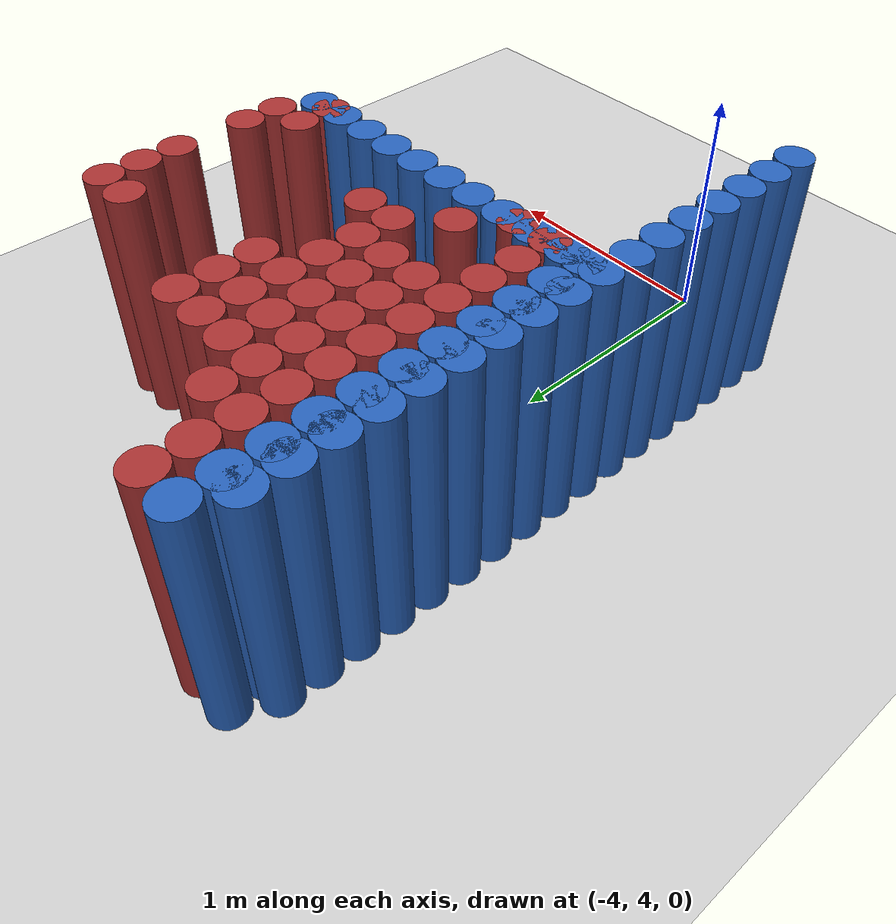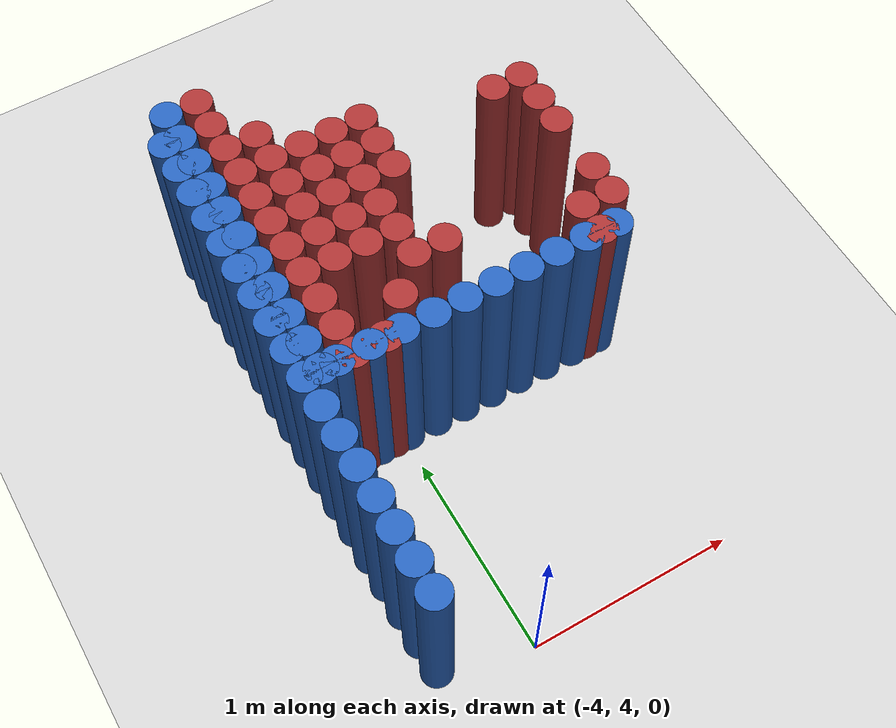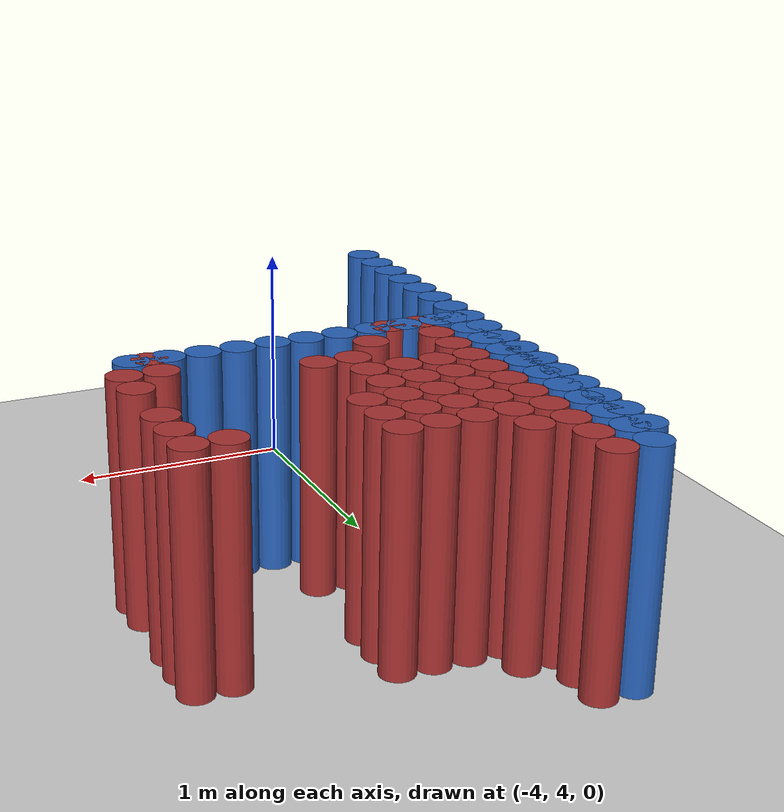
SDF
<sdf version="1.6">
 <world name="barn_world">
  <model name="ground_plane">
   <static>1</static>
   <link name="link">
    <collision name="collision">
     <geometry><plane><normal>0 0 1</normal><size>100 100</size></plane></geometry>
    </collision>
    <visual name="visual">
     <geometry><plane><normal>0 0 1</normal><size>100 100</size></plane></geometry>
     <material>
      <script><uri>file://media/materials/scripts/gazebo.material</uri><name>Gazebo/Grey</name></script>
     </material>
    </visual>
   </link>
  </model>
  <model name="unit_cylinder_83">
   <static>1</static>
   <pose>-4.4250 4.1250 0.5 0 0 0</pose>
   <link name="link">
    <collision name="collision">
     <geometry><cylinder><radius>0.075</radius><length>1</length></cylinder></geometry>
    </collision>
    <visual name="visual">
     <geometry><cylinder><radius>0.075</radius><length>1</length></cylinder></geometry>
     <material><ambient>0.152 0.379 0.72 1</ambient><diffuse>0.152 0.379 0.72 1</diffuse></material>
    </visual>
   </link>
  </model>
  <model name="unit_cylinder_85">
   <static>1</static>
   <pose>-4.4250 4.2750 0.5 0 0 0</pose>
   <link name="link">
    <collision name="collision">
     <geometry><cylinder><radius>0.075</radius><length>1</length></cylinder></geometry>
    </collision>
    <visual name="visual">
     <geometry><cylinder><radius>0.075</radius><length>1</length></cylinder></geometry>
     <material><ambient>0.152 0.379 0.72 1</ambient><diffuse>0.152 0.379 0.72 1</diffuse></material>
    </visual>
   </link>
  </model>
  <model name="unit_cylinder_87">
   <static>1</static>
   <pose>-4.4250 4.4250 0.5 0 0 0</pose>
   <link name="link">
    <collision name="collision">
     <geometry><cylinder><radius>0.075</radius><length>1</length></cylinder></geometry>
    </collision>
    <visual name="visual">
     <geometry><cylinder><radius>0.075</radius><length>1</length></cylinder></geometry>
     <material><ambient>0.152 0.379 0.72 1</ambient><diffuse>0.152 0.379 0.72 1</diffuse></material>
    </visual>
   </link>
  </model>
  <model name="unit_cylinder_89">
   <static>1</static>
   <pose>-4.4250 4.5750 0.5 0 0 0</pose>
   <link name="link">
    <collision name="collision">
     <geometry><cylinder><radius>0.075</radius><length>1</length></cylinder></geometry>
    </collision>
    <visual name="visual">
     <geometry><cylinder><radius>0.075</radius><length>1</length></cylinder></geometry>
     <material><ambient>0.152 0.379 0.72 1</ambient><diffuse>0.152 0.379 0.72 1</diffuse></material>
    </visual>
   </link>
  </model>
  <model name="unit_cylinder_91">
   <static>1</static>
   <pose>-4.4250 4.7250 0.5 0 0 0</pose>
   <link name="link">
    <collision name="collision">
     <geometry><cylinder><radius>0.075</radius><length>1</length></cylinder></geometry>
    </collision>
    <visual name="visual">
     <geometry><cylinder><radius>0.075</radius><length>1</length></cylinder></geometry>
     <material><ambient>0.152 0.379 0.72 1</ambient><diffuse>0.152 0.379 0.72 1</diffuse></material>
    </visual>
   </link>
  </model>
  <model name="unit_cylinder_93">
   <static>1</static>
   <pose>-4.4250 4.8750 0.5 0 0 0</pose>
   <link name="link">
    <collision name="collision">
     <geometry><cylinder><radius>0.075</radius><length>1</length></cylinder></geometry>
    </collision>
    <visual name="visual">
     <geometry><cylinder><radius>0.075</radius><length>1</length></cylinder></geometry>
     <material><ambient>0.152 0.379 0.72 1</ambient><diffuse>0.152 0.379 0.72 1</diffuse></material>
    </visual>
   </link>
  </model>
  <model name="unit_cylinder_95">
   <static>1</static>
   <pose>-4.4250 5.0250 0.5 0 0 0</pose>
   <link name="link">
    <collision name="collision">
     <geometry><cylinder><radius>0.075</radius><length>1</length></cylinder></geometry>
    </collision>
    <visual name="visual">
     <geometry><cylinder><radius>0.075</radius><length>1</length></cylinder></geometry>
     <material><ambient>0.152 0.379 0.72 1</ambient><diffuse>0.152 0.379 0.72 1</diffuse></material>
    </visual>
   </link>
  </model>
  <model name="unit_cylinder_115">
   <static>1</static>
   <pose>-2.9250 5.1750 0.5 0 0 0</pose>
   <link name="link">
    <collision name="collision">
     <geometry><cylinder><radius>0.075</radius><length>1</length></cylinder></geometry>
    </collision>
    <visual name="visual">
     <geometry><cylinder><radius>0.075</radius><length>1</length></cylinder></geometry>
     <material><ambient>0.152 0.379 0.72 1</ambient><diffuse>0.152 0.379 0.72 1</diffuse></material>
    </visual>
   </link>
  </model>
  <model name="unit_cylinder_116">
   <static>1</static>
   <pose>-3.0750 5.1750 0.5 0 0 0</pose>
   <link name="link">
    <collision name="collision">
     <geometry><cylinder><radius>0.075</radius><length>1</length></cylinder></geometry>
    </collision>
    <visual name="visual">
     <geometry><cylinder><radius>0.075</radius><length>1</length></cylinder></geometry>
     <material><ambient>0.152 0.379 0.72 1</ambient><diffuse>0.152 0.379 0.72 1</diffuse></material>
    </visual>
   </link>
  </model>
  <model name="unit_cylinder_117">
   <static>1</static>
   <pose>-3.2250 5.1750 0.5 0 0 0</pose>
   <link name="link">
    <collision name="collision">
     <geometry><cylinder><radius>0.075</radius><length>1</length></cylinder></geometry>
    </collision>
    <visual name="visual">
     <geometry><cylinder><radius>0.075</radius><length>1</length></cylinder></geometry>
     <material><ambient>0.152 0.379 0.72 1</ambient><diffuse>0.152 0.379 0.72 1</diffuse></material>
    </visual>
   </link>
  </model>
  <model name="unit_cylinder_118">
   <static>1</static>
   <pose>-3.3750 5.1750 0.5 0 0 0</pose>
   <link name="link">
    <collision name="collision">
     <geometry><cylinder><radius>0.075</radius><length>1</length></cylinder></geometry>
    </collision>
    <visual name="visual">
     <geometry><cylinder><radius>0.075</radius><length>1</length></cylinder></geometry>
     <material><ambient>0.152 0.379 0.72 1</ambient><diffuse>0.152 0.379 0.72 1</diffuse></material>
    </visual>
   </link>
  </model>
  <model name="unit_cylinder_119">
   <static>1</static>
   <pose>-3.5250 5.1750 0.5 0 0 0</pose>
   <link name="link">
    <collision name="collision">
     <geometry><cylinder><radius>0.075</radius><length>1</length></cylinder></geometry>
    </collision>
    <visual name="visual">
     <geometry><cylinder><radius>0.075</radius><length>1</length></cylinder></geometry>
     <material><ambient>0.152 0.379 0.72 1</ambient><diffuse>0.152 0.379 0.72 1</diffuse></material>
    </visual>
   </link>
  </model>
  <model name="unit_cylinder_120">
   <static>1</static>
   <pose>-3.6750 5.1750 0.5 0 0 0</pose>
   <link name="link">
    <collision name="collision">
     <geometry><cylinder><radius>0.075</radius><length>1</length></cylinder></geometry>
    </collision>
    <visual name="visual">
     <geometry><cylinder><radius>0.075</radius><length>1</length></cylinder></geometry>
     <material><ambient>0.152 0.379 0.72 1</ambient><diffuse>0.152 0.379 0.72 1</diffuse></material>
    </visual>
   </link>
  </model>
  <model name="unit_cylinder_121">
   <static>1</static>
   <pose>-3.8250 5.1750 0.5 0 0 0</pose>
   <link name="link">
    <collision name="collision">
     <geometry><cylinder><radius>0.075</radius><length>1</length></cylinder></geometry>
    </collision>
    <visual name="visual">
     <geometry><cylinder><radius>0.075</radius><length>1</length></cylinder></geometry>
     <material><ambient>0.152 0.379 0.72 1</ambient><diffuse>0.152 0.379 0.72 1</diffuse></material>
    </visual>
   </link>
  </model>
  <model name="unit_cylinder_122">
   <static>1</static>
   <pose>-3.9750 5.1750 0.5 0 0 0</pose>
   <link name="link">
    <collision name="collision">
     <geometry><cylinder><radius>0.075</radius><length>1</length></cylinder></geometry>
    </collision>
    <visual name="visual">
     <geometry><cylinder><radius>0.075</radius><length>1</length></cylinder></geometry>
     <material><ambient>0.152 0.379 0.72 1</ambient><diffuse>0.152 0.379 0.72 1</diffuse></material>
    </visual>
   </link>
  </model>
  <model name="unit_cylinder_123">
   <static>1</static>
   <pose>-4.1250 5.1750 0.5 0 0 0</pose>
   <link name="link">
    <collision name="collision">
     <geometry><cylinder><radius>0.075</radius><length>1</length></cylinder></geometry>
    </collision>
    <visual name="visual">
     <geometry><cylinder><radius>0.075</radius><length>1</length></cylinder></geometry>
     <material><ambient>0.152 0.379 0.72 1</ambient><diffuse>0.152 0.379 0.72 1</diffuse></material>
    </visual>
   </link>
  </model>
  <model name="unit_cylinder_124">
   <static>1</static>
   <pose>-4.2750 5.1750 0.5 0 0 0</pose>
   <link name="link">
    <collision name="collision">
     <geometry><cylinder><radius>0.075</radius><length>1</length></cylinder></geometry>
    </collision>
    <visual name="visual">
     <geometry><cylinder><radius>0.075</radius><length>1</length></cylinder></geometry>
     <material><ambient>0.152 0.379 0.72 1</ambient><diffuse>0.152 0.379 0.72 1</diffuse></material>
    </visual>
   </link>
  </model>
  <model name="unit_cylinder_125">
   <static>1</static>
   <pose>-4.4250 5.1750 0.5 0 0 0</pose>
   <link name="link">
    <collision name="collision">
     <geometry><cylinder><radius>0.075</radius><length>1</length></cylinder></geometry>
    </collision>
    <visual name="visual">
     <geometry><cylinder><radius>0.075</radius><length>1</length></cylinder></geometry>
     <material><ambient>0.152 0.379 0.72 1</ambient><diffuse>0.152 0.379 0.72 1</diffuse></material>
    </visual>
   </link>
  </model>
  <model name="unit_cylinder_126">
   <static>1</static>
   <pose>-4.3500 5.1750 0.5 0 0 0</pose>
   <link name="link">
    <collision name="collision">
     <geometry><cylinder><radius>0.075</radius><length>1</length></cylinder></geometry>
    </collision>
    <visual name="visual">
     <geometry><cylinder><radius>0.075</radius><length>1</length></cylinder></geometry>
     <material><ambient>0.152 0.379 0.72 1</ambient><diffuse>0.152 0.379 0.72 1</diffuse></material>
    </visual>
   </link>
  </model>
  <model name="unit_cylinder_127">
   <static>1</static>
   <pose>-4.3500 5.3250 0.5 0 0 0</pose>
   <link name="link">
    <collision name="collision">
     <geometry><cylinder><radius>0.075</radius><length>1</length></cylinder></geometry>
    </collision>
    <visual name="visual">
     <geometry><cylinder><radius>0.075</radius><length>1</length></cylinder></geometry>
     <material><ambient>0.152 0.379 0.72 1</ambient><diffuse>0.152 0.379 0.72 1</diffuse></material>
    </visual>
   </link>
  </model>
  <model name="unit_cylinder_128">
   <static>1</static>
   <pose>-4.3500 5.4750 0.5 0 0 0</pose>
   <link name="link">
    <collision name="collision">
     <geometry><cylinder><radius>0.075</radius><length>1</length></cylinder></geometry>
    </collision>
    <visual name="visual">
     <geometry><cylinder><radius>0.075</radius><length>1</length></cylinder></geometry>
     <material><ambient>0.152 0.379 0.72 1</ambient><diffuse>0.152 0.379 0.72 1</diffuse></material>
    </visual>
   </link>
  </model>
  <model name="unit_cylinder_129">
   <static>1</static>
   <pose>-4.3500 5.6250 0.5 0 0 0</pose>
   <link name="link">
    <collision name="collision">
     <geometry><cylinder><radius>0.075</radius><length>1</length></cylinder></geometry>
    </collision>
    <visual name="visual">
     <geometry><cylinder><radius>0.075</radius><length>1</length></cylinder></geometry>
     <material><ambient>0.152 0.379 0.72 1</ambient><diffuse>0.152 0.379 0.72 1</diffuse></material>
    </visual>
   </link>
  </model>
  <model name="unit_cylinder_130">
   <static>1</static>
   <pose>-4.3500 5.7750 0.5 0 0 0</pose>
   <link name="link">
    <collision name="collision">
     <geometry><cylinder><radius>0.075</radius><length>1</length></cylinder></geometry>
    </collision>
    <visual name="visual">
     <geometry><cylinder><radius>0.075</radius><length>1</length></cylinder></geometry>
     <material><ambient>0.152 0.379 0.72 1</ambient><diffuse>0.152 0.379 0.72 1</diffuse></material>
    </visual>
   </link>
  </model>
  <model name="unit_cylinder_131">
   <static>1</static>
   <pose>-4.3500 5.9250 0.5 0 0 0</pose>
   <link name="link">
    <collision name="collision">
     <geometry><cylinder><radius>0.075</radius><length>1</length></cylinder></geometry>
    </collision>
    <visual name="visual">
     <geometry><cylinder><radius>0.075</radius><length>1</length></cylinder></geometry>
     <material><ambient>0.152 0.379 0.72 1</ambient><diffuse>0.152 0.379 0.72 1</diffuse></material>
    </visual>
   </link>
  </model>
  <model name="unit_cylinder_132">
   <static>1</static>
   <pose>-4.3500 6.0750 0.5 0 0 0</pose>
   <link name="link">
    <collision name="collision">
     <geometry><cylinder><radius>0.075</radius><length>1</length></cylinder></geometry>
    </collision>
    <visual name="visual">
     <geometry><cylinder><radius>0.075</radius><length>1</length></cylinder></geometry>
     <material><ambient>0.152 0.379 0.72 1</ambient><diffuse>0.152 0.379 0.72 1</diffuse></material>
    </visual>
   </link>
  </model>
  <model name="unit_cylinder_133">
   <static>1</static>
   <pose>-4.3500 6.2250 0.5 0 0 0</pose>
   <link name="link">
    <collision name="collision">
     <geometry><cylinder><radius>0.075</radius><length>1</length></cylinder></geometry>
    </collision>
    <visual name="visual">
     <geometry><cylinder><radius>0.075</radius><length>1</length></cylinder></geometry>
     <material><ambient>0.152 0.379 0.72 1</ambient><diffuse>0.152 0.379 0.72 1</diffuse></material>
    </visual>
   </link>
  </model>
  <model name="unit_cylinder_134">
   <static>1</static>
   <pose>-4.3500 6.3750 0.5 0 0 0</pose>
   <link name="link">
    <collision name="collision">
     <geometry><cylinder><radius>0.075</radius><length>1</length></cylinder></geometry>
    </collision>
    <visual name="visual">
     <geometry><cylinder><radius>0.075</radius><length>1</length></cylinder></geometry>
     <material><ambient>0.152 0.379 0.72 1</ambient><diffuse>0.152 0.379 0.72 1</diffuse></material>
    </visual>
   </link>
  </model>
  <model name="unit_cylinder_135">
   <static>1</static>
   <pose>-4.3500 6.5250 0.5 0 0 0</pose>
   <link name="link">
    <collision name="collision">
     <geometry><cylinder><radius>0.075</radius><length>1</length></cylinder></geometry>
    </collision>
    <visual name="visual">
     <geometry><cylinder><radius>0.075</radius><length>1</length></cylinder></geometry>
     <material><ambient>0.152 0.379 0.72 1</ambient><diffuse>0.152 0.379 0.72 1</diffuse></material>
    </visual>
   </link>
  </model>
  <model name="unit_cylinder_136">
   <static>1</static>
   <pose>-4.3500 6.6750 0.5 0 0 0</pose>
   <link name="link">
    <collision name="collision">
     <geometry><cylinder><radius>0.075</radius><length>1</length></cylinder></geometry>
    </collision>
    <visual name="visual">
     <geometry><cylinder><radius>0.075</radius><length>1</length></cylinder></geometry>
     <material><ambient>0.152 0.379 0.72 1</ambient><diffuse>0.152 0.379 0.72 1</diffuse></material>
    </visual>
   </link>
  </model>
  <model name="unit_cylinder_156">
   <static>1</static>
   <pose>-4.2000 5.1750 0.5 0 0 0</pose>
   <link name="link">
    <collision name="collision">
     <geometry><cylinder><radius>0.075</radius><length>1</length></cylinder></geometry>
    </collision>
    <visual name="visual">
     <geometry><cylinder><radius>0.075</radius><length>1</length></cylinder></geometry>
     <material><ambient>0.648 0.192 0.192 1</ambient><diffuse>0.648 0.192 0.192 1</diffuse></material>
    </visual>
   </link>
  </model>
  <model name="unit_cylinder_157">
   <static>1</static>
   <pose>-4.2000 5.3250 0.5 0 0 0</pose>
   <link name="link">
    <collision name="collision">
     <geometry><cylinder><radius>0.075</radius><length>1</length></cylinder></geometry>
    </collision>
    <visual name="visual">
     <geometry><cylinder><radius>0.075</radius><length>1</length></cylinder></geometry>
     <material><ambient>0.648 0.192 0.192 1</ambient><diffuse>0.648 0.192 0.192 1</diffuse></material>
    </visual>
   </link>
  </model>
  <model name="unit_cylinder_158">
   <static>1</static>
   <pose>-4.2000 5.4750 0.5 0 0 0</pose>
   <link name="link">
    <collision name="collision">
     <geometry><cylinder><radius>0.075</radius><length>1</length></cylinder></geometry>
    </collision>
    <visual name="visual">
     <geometry><cylinder><radius>0.075</radius><length>1</length></cylinder></geometry>
     <material><ambient>0.648 0.192 0.192 1</ambient><diffuse>0.648 0.192 0.192 1</diffuse></material>
    </visual>
   </link>
  </model>
  <model name="unit_cylinder_159">
   <static>1</static>
   <pose>-4.2000 5.6250 0.5 0 0 0</pose>
   <link name="link">
    <collision name="collision">
     <geometry><cylinder><radius>0.075</radius><length>1</length></cylinder></geometry>
    </collision>
    <visual name="visual">
     <geometry><cylinder><radius>0.075</radius><length>1</length></cylinder></geometry>
     <material><ambient>0.648 0.192 0.192 1</ambient><diffuse>0.648 0.192 0.192 1</diffuse></material>
    </visual>
   </link>
  </model>
  <model name="unit_cylinder_160">
   <static>1</static>
   <pose>-4.2000 5.7750 0.5 0 0 0</pose>
   <link name="link">
    <collision name="collision">
     <geometry><cylinder><radius>0.075</radius><length>1</length></cylinder></geometry>
    </collision>
    <visual name="visual">
     <geometry><cylinder><radius>0.075</radius><length>1</length></cylinder></geometry>
     <material><ambient>0.648 0.192 0.192 1</ambient><diffuse>0.648 0.192 0.192 1</diffuse></material>
    </visual>
   </link>
  </model>
  <model name="unit_cylinder_161">
   <static>1</static>
   <pose>-4.2000 5.9250 0.5 0 0 0</pose>
   <link name="link">
    <collision name="collision">
     <geometry><cylinder><radius>0.075</radius><length>1</length></cylinder></geometry>
    </collision>
    <visual name="visual">
     <geometry><cylinder><radius>0.075</radius><length>1</length></cylinder></geometry>
     <material><ambient>0.648 0.192 0.192 1</ambient><diffuse>0.648 0.192 0.192 1</diffuse></material>
    </visual>
   </link>
  </model>
  <model name="unit_cylinder_162">
   <static>1</static>
   <pose>-4.2000 6.0750 0.5 0 0 0</pose>
   <link name="link">
    <collision name="collision">
     <geometry><cylinder><radius>0.075</radius><length>1</length></cylinder></geometry>
    </collision>
    <visual name="visual">
     <geometry><cylinder><radius>0.075</radius><length>1</length></cylinder></geometry>
     <material><ambient>0.648 0.192 0.192 1</ambient><diffuse>0.648 0.192 0.192 1</diffuse></material>
    </visual>
   </link>
  </model>
  <model name="unit_cylinder_163">
   <static>1</static>
   <pose>-4.2000 6.2250 0.5 0 0 0</pose>
   <link name="link">
    <collision name="collision">
     <geometry><cylinder><radius>0.075</radius><length>1</length></cylinder></geometry>
    </collision>
    <visual name="visual">
     <geometry><cylinder><radius>0.075</radius><length>1</length></cylinder></geometry>
     <material><ambient>0.648 0.192 0.192 1</ambient><diffuse>0.648 0.192 0.192 1</diffuse></material>
    </visual>
   </link>
  </model>
  <model name="unit_cylinder_164">
   <static>1</static>
   <pose>-4.2000 6.3750 0.5 0 0 0</pose>
   <link name="link">
    <collision name="collision">
     <geometry><cylinder><radius>0.075</radius><length>1</length></cylinder></geometry>
    </collision>
    <visual name="visual">
     <geometry><cylinder><radius>0.075</radius><length>1</length></cylinder></geometry>
     <material><ambient>0.648 0.192 0.192 1</ambient><diffuse>0.648 0.192 0.192 1</diffuse></material>
    </visual>
   </link>
  </model>
  <model name="unit_cylinder_165">
   <static>1</static>
   <pose>-4.2000 6.5250 0.5 0 0 0</pose>
   <link name="link">
    <collision name="collision">
     <geometry><cylinder><radius>0.075</radius><length>1</length></cylinder></geometry>
    </collision>
    <visual name="visual">
     <geometry><cylinder><radius>0.075</radius><length>1</length></cylinder></geometry>
     <material><ambient>0.648 0.192 0.192 1</ambient><diffuse>0.648 0.192 0.192 1</diffuse></material>
    </visual>
   </link>
  </model>
  <model name="unit_cylinder_166">
   <static>1</static>
   <pose>-4.2000 6.6750 0.5 0 0 0</pose>
   <link name="link">
    <collision name="collision">
     <geometry><cylinder><radius>0.075</radius><length>1</length></cylinder></geometry>
    </collision>
    <visual name="visual">
     <geometry><cylinder><radius>0.075</radius><length>1</length></cylinder></geometry>
     <material><ambient>0.648 0.192 0.192 1</ambient><diffuse>0.648 0.192 0.192 1</diffuse></material>
    </visual>
   </link>
  </model>
  <model name="unit_cylinder_181">
   <static>1</static>
   <pose>-4.0500 5.1750 0.5 0 0 0</pose>
   <link name="link">
    <collision name="collision">
     <geometry><cylinder><radius>0.075</radius><length>1</length></cylinder></geometry>
    </collision>
    <visual name="visual">
     <geometry><cylinder><radius>0.075</radius><length>1</length></cylinder></geometry>
     <material><ambient>0.648 0.192 0.192 1</ambient><diffuse>0.648 0.192 0.192 1</diffuse></material>
    </visual>
   </link>
  </model>
  <model name="unit_cylinder_182">
   <static>1</static>
   <pose>-4.0500 5.6250 0.5 0 0 0</pose>
   <link name="link">
    <collision name="collision">
     <geometry><cylinder><radius>0.075</radius><length>1</length></cylinder></geometry>
    </collision>
    <visual name="visual">
     <geometry><cylinder><radius>0.075</radius><length>1</length></cylinder></geometry>
     <material><ambient>0.648 0.192 0.192 1</ambient><diffuse>0.648 0.192 0.192 1</diffuse></material>
    </visual>
   </link>
  </model>
  <model name="unit_cylinder_183">
   <static>1</static>
   <pose>-4.0500 5.7750 0.5 0 0 0</pose>
   <link name="link">
    <collision name="collision">
     <geometry><cylinder><radius>0.075</radius><length>1</length></cylinder></geometry>
    </collision>
    <visual name="visual">
     <geometry><cylinder><radius>0.075</radius><length>1</length></cylinder></geometry>
     <material><ambient>0.648 0.192 0.192 1</ambient><diffuse>0.648 0.192 0.192 1</diffuse></material>
    </visual>
   </link>
  </model>
  <model name="unit_cylinder_184">
   <static>1</static>
   <pose>-4.0500 5.9250 0.5 0 0 0</pose>
   <link name="link">
    <collision name="collision">
     <geometry><cylinder><radius>0.075</radius><length>1</length></cylinder></geometry>
    </collision>
    <visual name="visual">
     <geometry><cylinder><radius>0.075</radius><length>1</length></cylinder></geometry>
     <material><ambient>0.648 0.192 0.192 1</ambient><diffuse>0.648 0.192 0.192 1</diffuse></material>
    </visual>
   </link>
  </model>
  <model name="unit_cylinder_185">
   <static>1</static>
   <pose>-4.0500 6.0750 0.5 0 0 0</pose>
   <link name="link">
    <collision name="collision">
     <geometry><cylinder><radius>0.075</radius><length>1</length></cylinder></geometry>
    </collision>
    <visual name="visual">
     <geometry><cylinder><radius>0.075</radius><length>1</length></cylinder></geometry>
     <material><ambient>0.648 0.192 0.192 1</ambient><diffuse>0.648 0.192 0.192 1</diffuse></material>
    </visual>
   </link>
  </model>
  <model name="unit_cylinder_186">
   <static>1</static>
   <pose>-4.0500 6.2250 0.5 0 0 0</pose>
   <link name="link">
    <collision name="collision">
     <geometry><cylinder><radius>0.075</radius><length>1</length></cylinder></geometry>
    </collision>
    <visual name="visual">
     <geometry><cylinder><radius>0.075</radius><length>1</length></cylinder></geometry>
     <material><ambient>0.648 0.192 0.192 1</ambient><diffuse>0.648 0.192 0.192 1</diffuse></material>
    </visual>
   </link>
  </model>
  <model name="unit_cylinder_187">
   <static>1</static>
   <pose>-4.0500 6.3750 0.5 0 0 0</pose>
   <link name="link">
    <collision name="collision">
     <geometry><cylinder><radius>0.075</radius><length>1</length></cylinder></geometry>
    </collision>
    <visual name="visual">
     <geometry><cylinder><radius>0.075</radius><length>1</length></cylinder></geometry>
     <material><ambient>0.648 0.192 0.192 1</ambient><diffuse>0.648 0.192 0.192 1</diffuse></material>
    </visual>
   </link>
  </model>
  <model name="unit_cylinder_194">
   <static>1</static>
   <pose>-3.9000 5.3250 0.5 0 0 0</pose>
   <link name="link">
    <collision name="collision">
     <geometry><cylinder><radius>0.075</radius><length>1</length></cylinder></geometry>
    </collision>
    <visual name="visual">
     <geometry><cylinder><radius>0.075</radius><length>1</length></cylinder></geometry>
     <material><ambient>0.648 0.192 0.192 1</ambient><diffuse>0.648 0.192 0.192 1</diffuse></material>
    </visual>
   </link>
  </model>
  <model name="unit_cylinder_195">
   <static>1</static>
   <pose>-3.9000 5.6250 0.5 0 0 0</pose>
   <link name="link">
    <collision name="collision">
     <geometry><cylinder><radius>0.075</radius><length>1</length></cylinder></geometry>
    </collision>
    <visual name="visual">
     <geometry><cylinder><radius>0.075</radius><length>1</length></cylinder></geometry>
     <material><ambient>0.648 0.192 0.192 1</ambient><diffuse>0.648 0.192 0.192 1</diffuse></material>
    </visual>
   </link>
  </model>
  <model name="unit_cylinder_196">
   <static>1</static>
   <pose>-3.9000 5.7750 0.5 0 0 0</pose>
   <link name="link">
    <collision name="collision">
     <geometry><cylinder><radius>0.075</radius><length>1</length></cylinder></geometry>
    </collision>
    <visual name="visual">
     <geometry><cylinder><radius>0.075</radius><length>1</length></cylinder></geometry>
     <material><ambient>0.648 0.192 0.192 1</ambient><diffuse>0.648 0.192 0.192 1</diffuse></material>
    </visual>
   </link>
  </model>
  <model name="unit_cylinder_197">
   <static>1</static>
   <pose>-3.9000 5.9250 0.5 0 0 0</pose>
   <link name="link">
    <collision name="collision">
     <geometry><cylinder><radius>0.075</radius><length>1</length></cylinder></geometry>
    </collision>
    <visual name="visual">
     <geometry><cylinder><radius>0.075</radius><length>1</length></cylinder></geometry>
     <material><ambient>0.648 0.192 0.192 1</ambient><diffuse>0.648 0.192 0.192 1</diffuse></material>
    </visual>
   </link>
  </model>
  <model name="unit_cylinder_198">
   <static>1</static>
   <pose>-3.9000 6.0750 0.5 0 0 0</pose>
   <link name="link">
    <collision name="collision">
     <geometry><cylinder><radius>0.075</radius><length>1</length></cylinder></geometry>
    </collision>
    <visual name="visual">
     <geometry><cylinder><radius>0.075</radius><length>1</length></cylinder></geometry>
     <material><ambient>0.648 0.192 0.192 1</ambient><diffuse>0.648 0.192 0.192 1</diffuse></material>
    </visual>
   </link>
  </model>
  <model name="unit_cylinder_199">
   <static>1</static>
   <pose>-3.9000 6.2250 0.5 0 0 0</pose>
   <link name="link">
    <collision name="collision">
     <geometry><cylinder><radius>0.075</radius><length>1</length></cylinder></geometry>
    </collision>
    <visual name="visual">
     <geometry><cylinder><radius>0.075</radius><length>1</length></cylinder></geometry>
     <material><ambient>0.648 0.192 0.192 1</ambient><diffuse>0.648 0.192 0.192 1</diffuse></material>
    </visual>
   </link>
  </model>
  <model name="unit_cylinder_203">
   <static>1</static>
   <pose>-3.7500 5.4750 0.5 0 0 0</pose>
   <link name="link">
    <collision name="collision">
     <geometry><cylinder><radius>0.075</radius><length>1</length></cylinder></geometry>
    </collision>
    <visual name="visual">
     <geometry><cylinder><radius>0.075</radius><length>1</length></cylinder></geometry>
     <material><ambient>0.648 0.192 0.192 1</ambient><diffuse>0.648 0.192 0.192 1</diffuse></material>
    </visual>
   </link>
  </model>
  <model name="unit_cylinder_204">
   <static>1</static>
   <pose>-3.7500 5.6250 0.5 0 0 0</pose>
   <link name="link">
    <collision name="collision">
     <geometry><cylinder><radius>0.075</radius><length>1</length></cylinder></geometry>
    </collision>
    <visual name="visual">
     <geometry><cylinder><radius>0.075</radius><length>1</length></cylinder></geometry>
     <material><ambient>0.648 0.192 0.192 1</ambient><diffuse>0.648 0.192 0.192 1</diffuse></material>
    </visual>
   </link>
  </model>
  <model name="unit_cylinder_205">
   <static>1</static>
   <pose>-3.7500 5.7750 0.5 0 0 0</pose>
   <link name="link">
    <collision name="collision">
     <geometry><cylinder><radius>0.075</radius><length>1</length></cylinder></geometry>
    </collision>
    <visual name="visual">
     <geometry><cylinder><radius>0.075</radius><length>1</length></cylinder></geometry>
     <material><ambient>0.648 0.192 0.192 1</ambient><diffuse>0.648 0.192 0.192 1</diffuse></material>
    </visual>
   </link>
  </model>
  <model name="unit_cylinder_206">
   <static>1</static>
   <pose>-3.7500 5.9250 0.5 0 0 0</pose>
   <link name="link">
    <collision name="collision">
     <geometry><cylinder><radius>0.075</radius><length>1</length></cylinder></geometry>
    </collision>
    <visual name="visual">
     <geometry><cylinder><radius>0.075</radius><length>1</length></cylinder></geometry>
     <material><ambient>0.648 0.192 0.192 1</ambient><diffuse>0.648 0.192 0.192 1</diffuse></material>
    </visual>
   </link>
  </model>
  <model name="unit_cylinder_207">
   <static>1</static>
   <pose>-3.7500 6.0750 0.5 0 0 0</pose>
   <link name="link">
    <collision name="collision">
     <geometry><cylinder><radius>0.075</radius><length>1</length></cylinder></geometry>
    </collision>
    <visual name="visual">
     <geometry><cylinder><radius>0.075</radius><length>1</length></cylinder></geometry>
     <material><ambient>0.648 0.192 0.192 1</ambient><diffuse>0.648 0.192 0.192 1</diffuse></material>
    </visual>
   </link>
  </model>
  <model name="unit_cylinder_208">
   <static>1</static>
   <pose>-3.7500 6.2250 0.5 0 0 0</pose>
   <link name="link">
    <collision name="collision">
     <geometry><cylinder><radius>0.075</radius><length>1</length></cylinder></geometry>
    </collision>
    <visual name="visual">
     <geometry><cylinder><radius>0.075</radius><length>1</length></cylinder></geometry>
     <material><ambient>0.648 0.192 0.192 1</ambient><diffuse>0.648 0.192 0.192 1</diffuse></material>
    </visual>
   </link>
  </model>
  <model name="unit_cylinder_215">
   <static>1</static>
   <pose>-3.6000 5.4750 0.5 0 0 0</pose>
   <link name="link">
    <collision name="collision">
     <geometry><cylinder><radius>0.075</radius><length>1</length></cylinder></geometry>
    </collision>
    <visual name="visual">
     <geometry><cylinder><radius>0.075</radius><length>1</length></cylinder></geometry>
     <material><ambient>0.648 0.192 0.192 1</ambient><diffuse>0.648 0.192 0.192 1</diffuse></material>
    </visual>
   </link>
  </model>
  <model name="unit_cylinder_216">
   <static>1</static>
   <pose>-3.6000 5.9250 0.5 0 0 0</pose>
   <link name="link">
    <collision name="collision">
     <geometry><cylinder><radius>0.075</radius><length>1</length></cylinder></geometry>
    </collision>
    <visual name="visual">
     <geometry><cylinder><radius>0.075</radius><length>1</length></cylinder></geometry>
     <material><ambient>0.648 0.192 0.192 1</ambient><diffuse>0.648 0.192 0.192 1</diffuse></material>
    </visual>
   </link>
  </model>
  <model name="unit_cylinder_217">
   <static>1</static>
   <pose>-3.6000 6.0750 0.5 0 0 0</pose>
   <link name="link">
    <collision name="collision">
     <geometry><cylinder><radius>0.075</radius><length>1</length></cylinder></geometry>
    </collision>
    <visual name="visual">
     <geometry><cylinder><radius>0.075</radius><length>1</length></cylinder></geometry>
     <material><ambient>0.648 0.192 0.192 1</ambient><diffuse>0.648 0.192 0.192 1</diffuse></material>
    </visual>
   </link>
  </model>
  <model name="unit_cylinder_218">
   <static>1</static>
   <pose>-3.6000 6.2250 0.5 0 0 0</pose>
   <link name="link">
    <collision name="collision">
     <geometry><cylinder><radius>0.075</radius><length>1</length></cylinder></geometry>
    </collision>
    <visual name="visual">
     <geometry><cylinder><radius>0.075</radius><length>1</length></cylinder></geometry>
     <material><ambient>0.648 0.192 0.192 1</ambient><diffuse>0.648 0.192 0.192 1</diffuse></material>
    </visual>
   </link>
  </model>
  <model name="unit_cylinder_232">
   <static>1</static>
   <pose>-3.0000 5.1750 0.5 0 0 0</pose>
   <link name="link">
    <collision name="collision">
     <geometry><cylinder><radius>0.075</radius><length>1</length></cylinder></geometry>
    </collision>
    <visual name="visual">
     <geometry><cylinder><radius>0.075</radius><length>1</length></cylinder></geometry>
     <material><ambient>0.648 0.192 0.192 1</ambient><diffuse>0.648 0.192 0.192 1</diffuse></material>
    </visual>
   </link>
  </model>
  <model name="unit_cylinder_233">
   <static>1</static>
   <pose>-3.0000 5.3250 0.5 0 0 0</pose>
   <link name="link">
    <collision name="collision">
     <geometry><cylinder><radius>0.075</radius><length>1</length></cylinder></geometry>
    </collision>
    <visual name="visual">
     <geometry><cylinder><radius>0.075</radius><length>1</length></cylinder></geometry>
     <material><ambient>0.648 0.192 0.192 1</ambient><diffuse>0.648 0.192 0.192 1</diffuse></material>
    </visual>
   </link>
  </model>
  <model name="unit_cylinder_234">
   <static>1</static>
   <pose>-3.0000 6.0750 0.5 0 0 0</pose>
   <link name="link">
    <collision name="collision">
     <geometry><cylinder><radius>0.075</radius><length>1</length></cylinder></geometry>
    </collision>
    <visual name="visual">
     <geometry><cylinder><radius>0.075</radius><length>1</length></cylinder></geometry>
     <material><ambient>0.648 0.192 0.192 1</ambient><diffuse>0.648 0.192 0.192 1</diffuse></material>
    </visual>
   </link>
  </model>
  <model name="unit_cylinder_238">
   <static>1</static>
   <pose>-2.8500 5.3250 0.5 0 0 0</pose>
   <link name="link">
    <collision name="collision">
     <geometry><cylinder><radius>0.075</radius><length>1</length></cylinder></geometry>
    </collision>
    <visual name="visual">
     <geometry><cylinder><radius>0.075</radius><length>1</length></cylinder></geometry>
     <material><ambient>0.648 0.192 0.192 1</ambient><diffuse>0.648 0.192 0.192 1</diffuse></material>
    </visual>
   </link>
  </model>
  <model name="unit_cylinder_239">
   <static>1</static>
   <pose>-2.8500 5.4750 0.5 0 0 0</pose>
   <link name="link">
    <collision name="collision">
     <geometry><cylinder><radius>0.075</radius><length>1</length></cylinder></geometry>
    </collision>
    <visual name="visual">
     <geometry><cylinder><radius>0.075</radius><length>1</length></cylinder></geometry>
     <material><ambient>0.648 0.192 0.192 1</ambient><diffuse>0.648 0.192 0.192 1</diffuse></material>
    </visual>
   </link>
  </model>
  <model name="unit_cylinder_240">
   <static>1</static>
   <pose>-2.8500 5.7750 0.5 0 0 0</pose>
   <link name="link">
    <collision name="collision">
     <geometry><cylinder><radius>0.075</radius><length>1</length></cylinder></geometry>
    </collision>
    <visual name="visual">
     <geometry><cylinder><radius>0.075</radius><length>1</length></cylinder></geometry>
     <material><ambient>0.648 0.192 0.192 1</ambient><diffuse>0.648 0.192 0.192 1</diffuse></material>
    </visual>
   </link>
  </model>
  <model name="unit_cylinder_241">
   <static>1</static>
   <pose>-2.8500 5.9250 0.5 0 0 0</pose>
   <link name="link">
    <collision name="collision">
     <geometry><cylinder><radius>0.075</radius><length>1</length></cylinder></geometry>
    </collision>
    <visual name="visual">
     <geometry><cylinder><radius>0.075</radius><length>1</length></cylinder></geometry>
     <material><ambient>0.648 0.192 0.192 1</ambient><diffuse>0.648 0.192 0.192 1</diffuse></material>
    </visual>
   </link>
  </model>
  <model name="unit_cylinder_242">
   <static>1</static>
   <pose>-2.8500 6.0750 0.5 0 0 0</pose>
   <link name="link">
    <collision name="collision">
     <geometry><cylinder><radius>0.075</radius><length>1</length></cylinder></geometry>
    </collision>
    <visual name="visual">
     <geometry><cylinder><radius>0.075</radius><length>1</length></cylinder></geometry>
     <material><ambient>0.648 0.192 0.192 1</ambient><diffuse>0.648 0.192 0.192 1</diffuse></material>
    </visual>
   </link>
  </model>
  <model name="unit_cylinder_432">
   <static>1</static>
   <pose>-4.4250 5.1750 0.5 0 0 0</pose>
   <link name="link">
    <collision name="collision">
     <geometry><cylinder><radius>0.075</radius><length>1</length></cylinder></geometry>
    </collision>
    <visual name="visual">
     <geometry><cylinder><radius>0.075</radius><length>1</length></cylinder></geometry>
     <material><ambient>0.152 0.379 0.72 1</ambient><diffuse>0.152 0.379 0.72 1</diffuse></material>
    </visual>
   </link>
  </model>
  <model name="unit_cylinder_434">
   <static>1</static>
   <pose>-4.4250 5.3250 0.5 0 0 0</pose>
   <link name="link">
    <collision name="collision">
     <geometry><cylinder><radius>0.075</radius><length>1</length></cylinder></geometry>
    </collision>
    <visual name="visual">
     <geometry><cylinder><radius>0.075</radius><length>1</length></cylinder></geometry>
     <material><ambient>0.152 0.379 0.72 1</ambient><diffuse>0.152 0.379 0.72 1</diffuse></material>
    </visual>
   </link>
  </model>
  <model name="unit_cylinder_436">
   <static>1</static>
   <pose>-4.4250 5.4750 0.5 0 0 0</pose>
   <link name="link">
    <collision name="collision">
     <geometry><cylinder><radius>0.075</radius><length>1</length></cylinder></geometry>
    </collision>
    <visual name="visual">
     <geometry><cylinder><radius>0.075</radius><length>1</length></cylinder></geometry>
     <material><ambient>0.152 0.379 0.72 1</ambient><diffuse>0.152 0.379 0.72 1</diffuse></material>
    </visual>
   </link>
  </model>
  <model name="unit_cylinder_438">
   <static>1</static>
   <pose>-4.4250 5.6250 0.5 0 0 0</pose>
   <link name="link">
    <collision name="collision">
     <geometry><cylinder><radius>0.075</radius><length>1</length></cylinder></geometry>
    </collision>
    <visual name="visual">
     <geometry><cylinder><radius>0.075</radius><length>1</length></cylinder></geometry>
     <material><ambient>0.152 0.379 0.72 1</ambient><diffuse>0.152 0.379 0.72 1</diffuse></material>
    </visual>
   </link>
  </model>
  <model name="unit_cylinder_440">
   <static>1</static>
   <pose>-4.4250 5.7750 0.5 0 0 0</pose>
   <link name="link">
    <collision name="collision">
     <geometry><cylinder><radius>0.075</radius><length>1</length></cylinder></geometry>
    </collision>
    <visual name="visual">
     <geometry><cylinder><radius>0.075</radius><length>1</length></cylinder></geometry>
     <material><ambient>0.152 0.379 0.72 1</ambient><diffuse>0.152 0.379 0.72 1</diffuse></material>
    </visual>
   </link>
  </model>
  <model name="unit_cylinder_442">
   <static>1</static>
   <pose>-4.4250 5.9250 0.5 0 0 0</pose>
   <link name="link">
    <collision name="collision">
     <geometry><cylinder><radius>0.075</radius><length>1</length></cylinder></geometry>
    </collision>
    <visual name="visual">
     <geometry><cylinder><radius>0.075</radius><length>1</length></cylinder></geometry>
     <material><ambient>0.152 0.379 0.72 1</ambient><diffuse>0.152 0.379 0.72 1</diffuse></material>
    </visual>
   </link>
  </model>
  <model name="unit_cylinder_444">
   <static>1</static>
   <pose>-4.4250 6.0750 0.5 0 0 0</pose>
   <link name="link">
    <collision name="collision">
     <geometry><cylinder><radius>0.075</radius><length>1</length></cylinder></geometry>
    </collision>
    <visual name="visual">
     <geometry><cylinder><radius>0.075</radius><length>1</length></cylinder></geometry>
     <material><ambient>0.152 0.379 0.72 1</ambient><diffuse>0.152 0.379 0.72 1</diffuse></material>
    </visual>
   </link>
  </model>
  <model name="unit_cylinder_446">
   <static>1</static>
   <pose>-4.4250 6.2250 0.5 0 0 0</pose>
   <link name="link">
    <collision name="collision">
     <geometry><cylinder><radius>0.075</radius><length>1</length></cylinder></geometry>
    </collision>
    <visual name="visual">
     <geometry><cylinder><radius>0.075</radius><length>1</length></cylinder></geometry>
     <material><ambient>0.152 0.379 0.72 1</ambient><diffuse>0.152 0.379 0.72 1</diffuse></material>
    </visual>
   </link>
  </model>
  <model name="unit_cylinder_448">
   <static>1</static>
   <pose>-4.4250 6.3750 0.5 0 0 0</pose>
   <link name="link">
    <collision name="collision">
     <geometry><cylinder><radius>0.075</radius><length>1</length></cylinder></geometry>
    </collision>
    <visual name="visual">
     <geometry><cylinder><radius>0.075</radius><length>1</length></cylinder></geometry>
     <material><ambient>0.152 0.379 0.72 1</ambient><diffuse>0.152 0.379 0.72 1</diffuse></material>
    </visual>
   </link>
  </model>
  <model name="unit_cylinder_450">
   <static>1</static>
   <pose>-4.4250 6.5250 0.5 0 0 0</pose>
   <link name="link">
    <collision name="collision">
     <geometry><cylinder><radius>0.075</radius><length>1</length></cylinder></geometry>
    </collision>
    <visual name="visual">
     <geometry><cylinder><radius>0.075</radius><length>1</length></cylinder></geometry>
     <material><ambient>0.152 0.379 0.72 1</ambient><diffuse>0.152 0.379 0.72 1</diffuse></material>
    </visual>
   </link>
  </model>
 </world>
</sdf>
